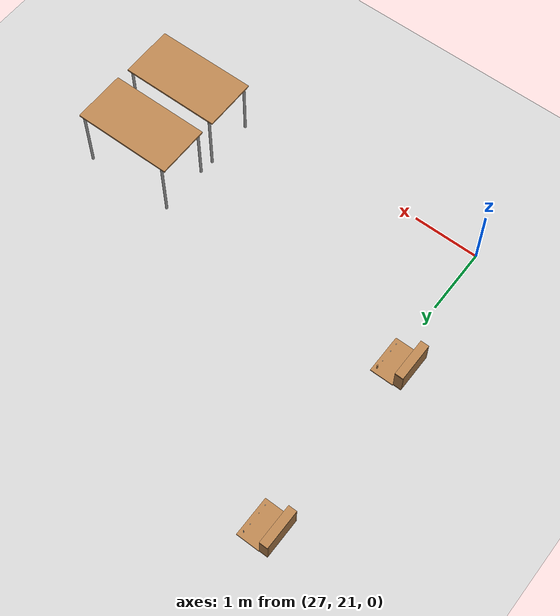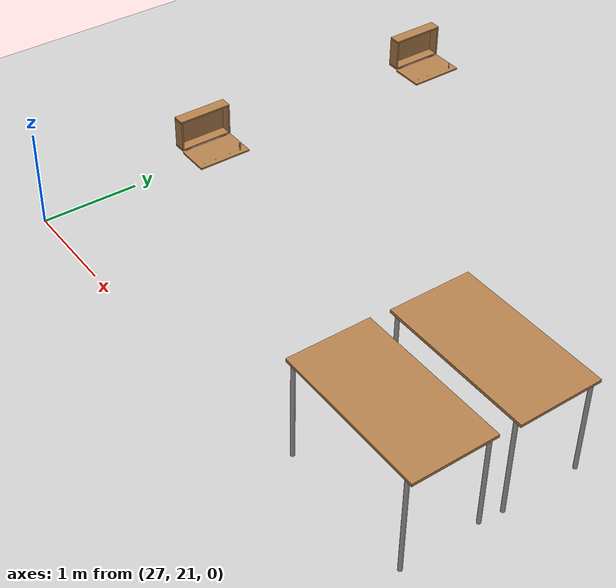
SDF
<sdf version="1.6">
 <world name="default">
  <model name="ground_plane">
   <static>1</static>
   <link name="link">
    <collision name="collision">
     <geometry><plane><normal>0 0 1</normal><size>100 100</size></plane></geometry>
     <surface><friction><ode><mu>100</mu><mu2>50</mu2></ode></friction></surface>
    </collision>
    <visual name="visual">
     <cast_shadows>0</cast_shadows>
     <geometry><plane><normal>0 0 1</normal><size>100 100</size></plane></geometry>
     <material>
      <script><uri>file://media/materials/scripts/gazebo.material</uri><name>Gazebo/Grey</name></script>
     </material>
    </visual>
   </link>
  </model>
  <model name="wooden_case_metal_peg">
   <link name="wooden_case::base">
    <pose>0 0 0.024 0 -0 0</pose>
    <inertial>
     <pose>-0.022184 0 0.171592 0 -0 0</pose>
     <mass>3.96264</mass>
     <inertia>
      <ixx>0.213536</ixx>
      <ixy>0</ixy>
      <ixz>0.000779377</ixz>
      <iyy>0.0708943</iyy>
      <iyz>0</iyz>
      <izz>0.154604</izz>
     </inertia>
    </inertial>
    <collision name="collision_back">
     <pose>-0.053975 0 0.1778 0 -0 0</pose>
     <geometry><box><size>0.01905 0.5461 0.3175</size></box></geometry>
     <surface>
      <contact>
       <poissons_ratio>0.347</poissons_ratio>
       <elastic_modulus>8.8e+09</elastic_modulus>
       <ode><kp>100000</kp><kd>100</kd><max_vel>100</max_vel><min_depth>0.001</min_depth></ode>
      </contact>
      <friction>
       <torsional>
        <coefficient>1</coefficient>
        <use_patch_radius>0</use_patch_radius>
        <surface_radius>0.01</surface_radius>
       </torsional>
      </friction>
     </surface>
    </collision>
    <visual name="visual_back">
     <pose>-0.053975 0 0.1778 0 -0 0</pose>
     <geometry><box><size>0.01905 0.5461 0.3175</size></box></geometry>
     <material>
      <script><uri>file://media/materials/scripts/gazebo.material</uri><name>Gazebo/Wood</name></script>
     </material>
    </visual>
    <collision name="collision_bottom">
     <pose>0 0 0.009525 0 -0 0</pose>
     <geometry><box><size>0.127 0.5842 0.01905</size></box></geometry>
     <surface>
      <contact>
       <poissons_ratio>0.347</poissons_ratio>
       <elastic_modulus>8.8e+09</elastic_modulus>
       <ode><kp>100000</kp><kd>100</kd><max_vel>100</max_vel><min_depth>0.001</min_depth></ode>
      </contact>
      <friction>
       <torsional>
        <coefficient>1</coefficient>
        <use_patch_radius>0</use_patch_radius>
        <surface_radius>0.01</surface_radius>
       </torsional>
      </friction>
     </surface>
    </collision>
    <visual name="visual_bottom">
     <pose>0 0 0.009525 0 -0 0</pose>
     <geometry><box><size>0.127 0.5842 0.01905</size></box></geometry>
     <material>
      <script><uri>file://media/materials/scripts/gazebo.material</uri><name>Gazebo/Wood</name></script>
     </material>
    </visual>
    <collision name="collision_top">
     <pose>0 0 0.346075 0 -0 0</pose>
     <geometry><box><size>0.127 0.5842 0.01905</size></box></geometry>
     <surface>
      <contact>
       <poissons_ratio>0.347</poissons_ratio>
       <elastic_modulus>8.8e+09</elastic_modulus>
       <ode><kp>100000</kp><kd>100</kd><max_vel>100</max_vel><min_depth>0.001</min_depth></ode>
      </contact>
      <friction>
       <torsional>
        <coefficient>1</coefficient>
        <use_patch_radius>0</use_patch_radius>
        <surface_radius>0.01</surface_radius>
       </torsional>
      </friction>
     </surface>
    </collision>
    <visual name="visual_top">
     <pose>0 0 0.346075 0 -0 0</pose>
     <geometry><box><size>0.127 0.5842 0.01905</size></box></geometry>
     <material>
      <script><uri>file://media/materials/scripts/gazebo.material</uri><name>Gazebo/Wood</name></script>
     </material>
    </visual>
    <collision name="collision_left">
     <pose>0 -0.282575 0.1778 0 -0 0</pose>
     <geometry><box><size>0.127 0.01905 0.3175</size></box></geometry>
     <surface>
      <contact>
       <poissons_ratio>0.347</poissons_ratio>
       <elastic_modulus>8.8e+09</elastic_modulus>
       <ode><kp>100000</kp><kd>100</kd><max_vel>100</max_vel><min_depth>0.001</min_depth></ode>
      </contact>
      <friction>
       <torsional>
        <coefficient>1</coefficient>
        <use_patch_radius>0</use_patch_radius>
        <surface_radius>0.01</surface_radius>
       </torsional>
      </friction>
     </surface>
    </collision>
    <visual name="visual_left">
     <pose>0 -0.282575 0.1778 0 -0 0</pose>
     <geometry><box><size>0.127 0.01905 0.3175</size></box></geometry>
     <material>
      <script><uri>file://media/materials/scripts/gazebo.material</uri><name>Gazebo/Wood</name></script>
     </material>
    </visual>
    <collision name="collision_right">
     <pose>0 0.282575 0.1778 0 -0 0</pose>
     <geometry><box><size>0.127 0.01905 0.3175</size></box></geometry>
     <surface>
      <contact>
       <poissons_ratio>0.347</poissons_ratio>
       <elastic_modulus>8.8e+09</elastic_modulus>
       <ode><kp>100000</kp><kd>100</kd><max_vel>100</max_vel><min_depth>0.001</min_depth></ode>
      </contact>
      <friction>
       <torsional>
        <coefficient>1</coefficient>
        <use_patch_radius>0</use_patch_radius>
        <surface_radius>0.01</surface_radius>
       </torsional>
      </friction>
     </surface>
    </collision>
    <visual name="visual_right">
     <pose>0 0.282575 0.1778 0 -0 0</pose>
     <geometry><box><size>0.127 0.01905 0.3175</size></box></geometry>
     <material>
      <script><uri>file://media/materials/scripts/gazebo.material</uri><name>Gazebo/Wood</name></script>
     </material>
    </visual>
    <collision name="collision_block_left">
     <pose>0.0095 -0.2151 -0.012 0 -0 0</pose>
     <geometry><box><size>0.108 0.05 0.024</size></box></geometry>
     <surface>
      <contact>
       <poissons_ratio>0.347</poissons_ratio>
       <elastic_modulus>8.8e+09</elastic_modulus>
       <ode><kp>100000</kp><kd>100</kd><max_vel>100</max_vel><min_depth>0.001</min_depth></ode>
      </contact>
      <friction>
       <torsional>
        <coefficient>1</coefficient>
        <use_patch_radius>0</use_patch_radius>
        <surface_radius>0.01</surface_radius>
       </torsional>
      </friction>
     </surface>
    </collision>
    <visual name="visual_block_left">
     <pose>0.0095 -0.2151 -0.012 0 -0 0</pose>
     <geometry><box><size>0.108 0.05 0.024</size></box></geometry>
     <material>
      <script><uri>file://media/materials/scripts/gazebo.material</uri><name>Gazebo/Wood</name></script>
     </material>
    </visual>
    <collision name="collision_block_right">
     <pose>0.0095 0.2151 -0.012 0 -0 0</pose>
     <geometry><box><size>0.108 0.05 0.024</size></box></geometry>
     <surface>
      <contact>
       <poissons_ratio>0.347</poissons_ratio>
       <elastic_modulus>8.8e+09</elastic_modulus>
       <ode><kp>100000</kp><kd>100</kd><max_vel>100</max_vel><min_depth>0.001</min_depth></ode>
      </contact>
      <friction>
       <torsional>
        <coefficient>1</coefficient>
        <use_patch_radius>0</use_patch_radius>
        <surface_radius>0.01</surface_radius>
       </torsional>
      </friction>
     </surface>
    </collision>
    <visual name="visual_block_right">
     <pose>0.0095 0.2151 -0.012 0 -0 0</pose>
     <geometry><box><size>0.108 0.05 0.024</size></box></geometry>
     <material>
      <script><uri>file://media/materials/scripts/gazebo.material</uri><name>Gazebo/Wood</name></script>
     </material>
    </visual>
   </link>
   <link name="wooden_case::lid">
    <pose>0.243775 0 0.009525 0 -0 0</pose>
    <inertial>
     <mass>1.97874</mass>
     <inertia>
      <ixx>0.0563367</ixx>
      <ixy>0</ixy>
      <ixz>0</ixz>
      <iyy>0.020911</iyy>
      <iyz>0</iyz>
      <izz>0.0771281</izz>
     </inertia>
    </inertial>
    <collision name="collision">
     <geometry><box><size>0.3556 0.5842 0.01905</size></box></geometry>
     <surface>
      <contact>
       <poissons_ratio>0.347</poissons_ratio>
       <elastic_modulus>8.8e+09</elastic_modulus>
       <ode><kp>100000</kp><kd>100</kd><max_vel>100</max_vel><min_depth>0.001</min_depth></ode>
      </contact>
      <friction>
       <torsional>
        <coefficient>1</coefficient>
        <use_patch_radius>0</use_patch_radius>
        <surface_radius>0.01</surface_radius>
       </torsional>
      </friction>
     </surface>
    </collision>
    <visual name="visual">
     <geometry><box><size>0.3556 0.5842 0.01905</size></box></geometry>
     <material>
      <script><uri>file://media/materials/scripts/gazebo.material</uri><name>Gazebo/Wood</name></script>
     </material>
    </visual>
    <visual name="tee_nut_1">
     <pose>0.122 -0.216 0 0 -0 0</pose>
     <geometry><cylinder><radius>0.00635</radius><length>0.0192405</length></cylinder></geometry>
     <material>
      <script><uri>file://media/materials/scripts/gazebo.material</uri><name>Gazebo/Grey</name></script>
     </material>
    </visual>
    <visual name="tee_nut_2">
     <pose>0.122 -0.088 0 0 -0 0</pose>
     <geometry><cylinder><radius>0.00635</radius><length>0.0192405</length></cylinder></geometry>
     <material>
      <script><uri>file://media/materials/scripts/gazebo.material</uri><name>Gazebo/Grey</name></script>
     </material>
    </visual>
    <visual name="tee_nut_3">
     <pose>0.122 0.088 0 0 -0 0</pose>
     <geometry><cylinder><radius>0.00635</radius><length>0.0192405</length></cylinder></geometry>
     <material>
      <script><uri>file://media/materials/scripts/gazebo.material</uri><name>Gazebo/Grey</name></script>
     </material>
    </visual>
    <visual name="tee_nut_4">
     <pose>0.122 0.216 0 0 -0 0</pose>
     <geometry><cylinder><radius>0.00635</radius><length>0.0192405</length></cylinder></geometry>
     <material>
      <script><uri>file://media/materials/scripts/gazebo.material</uri><name>Gazebo/Grey</name></script>
     </material>
    </visual>
   </link>
   <joint name="wooden_case::lid_hinge" type="revolute">
    <pose>-0.1778 0 0.01905 0 -0 0</pose>
    <parent>wooden_case::base</parent>
    <child>wooden_case::lid</child>
    <axis>
     <xyz>0 1 0</xyz>
     <limit><upper>0.523599</upper><lower>-1.5708</lower></limit>
     <use_parent_model_frame>0</use_parent_model_frame>
     <dynamics><spring_reference>0</spring_reference><spring_stiffness>0</spring_stiffness></dynamics>
    </axis>
   </joint>
   <link name="peg::link">
    <pose>0.365774 0.216 0.05005 0 -0 0</pose>
    <inertial>
     <mass>0.0121</mass>
     <inertia>
      <ixx>3.90898e-06</ixx>
      <ixy>0</ixy>
      <ixz>0</ixz>
      <iyy>3.90898e-06</iyy>
      <iyz>0</iyz>
      <izz>6.58845e-08</izz>
     </inertia>
    </inertial>
    <collision name="collision">
     <geometry><cylinder><radius>0.0033</radius><length>0.062</length></cylinder></geometry>
     <surface>
      <contact>
       <poissons_ratio>0.305</poissons_ratio>
       <elastic_modulus>2e+11</elastic_modulus>
       <ode><kp>100000</kp><kd>100</kd><max_vel>100</max_vel><min_depth>0.001</min_depth></ode>
      </contact>
      <friction>
       <torsional>
        <coefficient>1</coefficient>
        <use_patch_radius>0</use_patch_radius>
        <surface_radius>0.01</surface_radius>
       </torsional>
      </friction>
     </surface>
    </collision>
    <visual name="visual">
     <geometry><cylinder><radius>0.0033</radius><length>0.062</length></cylinder></geometry>
     <material>
      <script><uri>file://media/materials/scripts/gazebo.material</uri><name>Gazebo/Grey</name></script>
     </material>
    </visual>
   </link>
   <joint name="case_peg" type="revolute">
    <child>peg::link</child>
    <parent>wooden_case::lid</parent>
    <axis>
     <xyz>0 0 1</xyz>
     <limit><upper>0</upper><lower>0</lower></limit>
     <use_parent_model_frame>0</use_parent_model_frame>
     <dynamics><spring_reference>0</spring_reference><spring_stiffness>0</spring_stiffness></dynamics>
    </axis>
   </joint>
   <pose>26.746 25.7744 -0.001057 0 -0.000431 0</pose>
  </model>
  <model name="wooden_case_wooden_peg">
   <link name="wooden_case::base">
    <pose>0 0 0.024 0 -0 0</pose>
    <inertial>
     <pose>-0.022184 0 0.171592 0 -0 0</pose>
     <mass>3.96264</mass>
     <inertia>
      <ixx>0.213536</ixx>
      <ixy>0</ixy>
      <ixz>0.000779377</ixz>
      <iyy>0.0708943</iyy>
      <iyz>0</iyz>
      <izz>0.154604</izz>
     </inertia>
    </inertial>
    <collision name="collision_back">
     <pose>-0.053975 0 0.1778 0 -0 0</pose>
     <geometry><box><size>0.01905 0.5461 0.3175</size></box></geometry>
     <surface>
      <contact>
       <poissons_ratio>0.347</poissons_ratio>
       <elastic_modulus>8.8e+09</elastic_modulus>
       <ode><kp>100000</kp><kd>100</kd><max_vel>100</max_vel><min_depth>0.001</min_depth></ode>
      </contact>
      <friction>
       <torsional>
        <coefficient>1</coefficient>
        <use_patch_radius>0</use_patch_radius>
        <surface_radius>0.01</surface_radius>
       </torsional>
      </friction>
     </surface>
    </collision>
    <visual name="visual_back">
     <pose>-0.053975 0 0.1778 0 -0 0</pose>
     <geometry><box><size>0.01905 0.5461 0.3175</size></box></geometry>
     <material>
      <script><uri>file://media/materials/scripts/gazebo.material</uri><name>Gazebo/Wood</name></script>
     </material>
    </visual>
    <collision name="collision_bottom">
     <pose>0 0 0.009525 0 -0 0</pose>
     <geometry><box><size>0.127 0.5842 0.01905</size></box></geometry>
     <surface>
      <contact>
       <poissons_ratio>0.347</poissons_ratio>
       <elastic_modulus>8.8e+09</elastic_modulus>
       <ode><kp>100000</kp><kd>100</kd><max_vel>100</max_vel><min_depth>0.001</min_depth></ode>
      </contact>
      <friction>
       <torsional>
        <coefficient>1</coefficient>
        <use_patch_radius>0</use_patch_radius>
        <surface_radius>0.01</surface_radius>
       </torsional>
      </friction>
     </surface>
    </collision>
    <visual name="visual_bottom">
     <pose>0 0 0.009525 0 -0 0</pose>
     <geometry><box><size>0.127 0.5842 0.01905</size></box></geometry>
     <material>
      <script><uri>file://media/materials/scripts/gazebo.material</uri><name>Gazebo/Wood</name></script>
     </material>
    </visual>
    <collision name="collision_top">
     <pose>0 0 0.346075 0 -0 0</pose>
     <geometry><box><size>0.127 0.5842 0.01905</size></box></geometry>
     <surface>
      <contact>
       <poissons_ratio>0.347</poissons_ratio>
       <elastic_modulus>8.8e+09</elastic_modulus>
       <ode><kp>100000</kp><kd>100</kd><max_vel>100</max_vel><min_depth>0.001</min_depth></ode>
      </contact>
      <friction>
       <torsional>
        <coefficient>1</coefficient>
        <use_patch_radius>0</use_patch_radius>
        <surface_radius>0.01</surface_radius>
       </torsional>
      </friction>
     </surface>
    </collision>
    <visual name="visual_top">
     <pose>0 0 0.346075 0 -0 0</pose>
     <geometry><box><size>0.127 0.5842 0.01905</size></box></geometry>
     <material>
      <script><uri>file://media/materials/scripts/gazebo.material</uri><name>Gazebo/Wood</name></script>
     </material>
    </visual>
    <collision name="collision_left">
     <pose>0 -0.282575 0.1778 0 -0 0</pose>
     <geometry><box><size>0.127 0.01905 0.3175</size></box></geometry>
     <surface>
      <contact>
       <poissons_ratio>0.347</poissons_ratio>
       <elastic_modulus>8.8e+09</elastic_modulus>
       <ode><kp>100000</kp><kd>100</kd><max_vel>100</max_vel><min_depth>0.001</min_depth></ode>
      </contact>
      <friction>
       <torsional>
        <coefficient>1</coefficient>
        <use_patch_radius>0</use_patch_radius>
        <surface_radius>0.01</surface_radius>
       </torsional>
      </friction>
     </surface>
    </collision>
    <visual name="visual_left">
     <pose>0 -0.282575 0.1778 0 -0 0</pose>
     <geometry><box><size>0.127 0.01905 0.3175</size></box></geometry>
     <material>
      <script><uri>file://media/materials/scripts/gazebo.material</uri><name>Gazebo/Wood</name></script>
     </material>
    </visual>
    <collision name="collision_right">
     <pose>0 0.282575 0.1778 0 -0 0</pose>
     <geometry><box><size>0.127 0.01905 0.3175</size></box></geometry>
     <surface>
      <contact>
       <poissons_ratio>0.347</poissons_ratio>
       <elastic_modulus>8.8e+09</elastic_modulus>
       <ode><kp>100000</kp><kd>100</kd><max_vel>100</max_vel><min_depth>0.001</min_depth></ode>
      </contact>
      <friction>
       <torsional>
        <coefficient>1</coefficient>
        <use_patch_radius>0</use_patch_radius>
        <surface_radius>0.01</surface_radius>
       </torsional>
      </friction>
     </surface>
    </collision>
    <visual name="visual_right">
     <pose>0 0.282575 0.1778 0 -0 0</pose>
     <geometry><box><size>0.127 0.01905 0.3175</size></box></geometry>
     <material>
      <script><uri>file://media/materials/scripts/gazebo.material</uri><name>Gazebo/Wood</name></script>
     </material>
    </visual>
    <collision name="collision_block_left">
     <pose>0.0095 -0.2151 -0.012 0 -0 0</pose>
     <geometry><box><size>0.108 0.05 0.024</size></box></geometry>
     <surface>
      <contact>
       <poissons_ratio>0.347</poissons_ratio>
       <elastic_modulus>8.8e+09</elastic_modulus>
       <ode><kp>100000</kp><kd>100</kd><max_vel>100</max_vel><min_depth>0.001</min_depth></ode>
      </contact>
      <friction>
       <torsional>
        <coefficient>1</coefficient>
        <use_patch_radius>0</use_patch_radius>
        <surface_radius>0.01</surface_radius>
       </torsional>
      </friction>
     </surface>
    </collision>
    <visual name="visual_block_left">
     <pose>0.0095 -0.2151 -0.012 0 -0 0</pose>
     <geometry><box><size>0.108 0.05 0.024</size></box></geometry>
     <material>
      <script><uri>file://media/materials/scripts/gazebo.material</uri><name>Gazebo/Wood</name></script>
     </material>
    </visual>
    <collision name="collision_block_right">
     <pose>0.0095 0.2151 -0.012 0 -0 0</pose>
     <geometry><box><size>0.108 0.05 0.024</size></box></geometry>
     <surface>
      <contact>
       <poissons_ratio>0.347</poissons_ratio>
       <elastic_modulus>8.8e+09</elastic_modulus>
       <ode><kp>100000</kp><kd>100</kd><max_vel>100</max_vel><min_depth>0.001</min_depth></ode>
      </contact>
      <friction>
       <torsional>
        <coefficient>1</coefficient>
        <use_patch_radius>0</use_patch_radius>
        <surface_radius>0.01</surface_radius>
       </torsional>
      </friction>
     </surface>
    </collision>
    <visual name="visual_block_right">
     <pose>0.0095 0.2151 -0.012 0 -0 0</pose>
     <geometry><box><size>0.108 0.05 0.024</size></box></geometry>
     <material>
      <script><uri>file://media/materials/scripts/gazebo.material</uri><name>Gazebo/Wood</name></script>
     </material>
    </visual>
   </link>
   <link name="wooden_case::lid">
    <pose>0.243775 0 0.009525 0 -0 0</pose>
    <inertial>
     <mass>1.97874</mass>
     <inertia>
      <ixx>0.0563367</ixx>
      <ixy>0</ixy>
      <ixz>0</ixz>
      <iyy>0.020911</iyy>
      <iyz>0</iyz>
      <izz>0.0771281</izz>
     </inertia>
    </inertial>
    <collision name="collision">
     <geometry><box><size>0.3556 0.5842 0.01905</size></box></geometry>
     <surface>
      <contact>
       <poissons_ratio>0.347</poissons_ratio>
       <elastic_modulus>8.8e+09</elastic_modulus>
       <ode><kp>100000</kp><kd>100</kd><max_vel>100</max_vel><min_depth>0.001</min_depth></ode>
      </contact>
      <friction>
       <torsional>
        <coefficient>1</coefficient>
        <use_patch_radius>0</use_patch_radius>
        <surface_radius>0.01</surface_radius>
       </torsional>
      </friction>
     </surface>
    </collision>
    <visual name="visual">
     <geometry><box><size>0.3556 0.5842 0.01905</size></box></geometry>
     <material>
      <script><uri>file://media/materials/scripts/gazebo.material</uri><name>Gazebo/Wood</name></script>
     </material>
    </visual>
    <visual name="tee_nut_1">
     <pose>0.122 -0.216 0 0 -0 0</pose>
     <geometry><cylinder><radius>0.00635</radius><length>0.0192405</length></cylinder></geometry>
     <material>
      <script><uri>file://media/materials/scripts/gazebo.material</uri><name>Gazebo/Grey</name></script>
     </material>
    </visual>
    <visual name="tee_nut_2">
     <pose>0.122 -0.088 0 0 -0 0</pose>
     <geometry><cylinder><radius>0.00635</radius><length>0.0192405</length></cylinder></geometry>
     <material>
      <script><uri>file://media/materials/scripts/gazebo.material</uri><name>Gazebo/Grey</name></script>
     </material>
    </visual>
    <visual name="tee_nut_3">
     <pose>0.122 0.088 0 0 -0 0</pose>
     <geometry><cylinder><radius>0.00635</radius><length>0.0192405</length></cylinder></geometry>
     <material>
      <script><uri>file://media/materials/scripts/gazebo.material</uri><name>Gazebo/Grey</name></script>
     </material>
    </visual>
    <visual name="tee_nut_4">
     <pose>0.122 0.216 0 0 -0 0</pose>
     <geometry><cylinder><radius>0.00635</radius><length>0.0192405</length></cylinder></geometry>
     <material>
      <script><uri>file://media/materials/scripts/gazebo.material</uri><name>Gazebo/Grey</name></script>
     </material>
    </visual>
   </link>
   <joint name="wooden_case::lid_hinge" type="revolute">
    <pose>-0.1778 0 0.01905 0 -0 0</pose>
    <parent>wooden_case::base</parent>
    <child>wooden_case::lid</child>
    <axis>
     <xyz>0 1 0</xyz>
     <limit><upper>0.523599</upper><lower>-1.5708</lower></limit>
     <use_parent_model_frame>0</use_parent_model_frame>
     <dynamics><spring_reference>0</spring_reference><spring_stiffness>0</spring_stiffness></dynamics>
    </axis>
   </joint>
   <link name="peg::link">
    <pose>0.365774 0.216 0.05905 0 -0 0</pose>
    <inertial>
     <mass>0.0175</mass>
     <inertia>
      <ixx>9.74923e-06</ixx>
      <ixy>0</ixy>
      <ixz>0</ixz>
      <iyy>9.74923e-06</iyy>
      <iyz>0</iyz>
      <izz>8.31797e-07</izz>
     </inertia>
    </inertial>
    <collision name="collision">
     <geometry><cylinder><radius>0.00975</radius><length>0.08</length></cylinder></geometry>
     <surface>
      <contact>
       <poissons_ratio>0.347</poissons_ratio>
       <elastic_modulus>8.8e+09</elastic_modulus>
       <ode><kp>100000</kp><kd>100</kd><max_vel>100</max_vel><min_depth>0.001</min_depth></ode>
      </contact>
      <friction>
       <torsional>
        <coefficient>1</coefficient>
        <use_patch_radius>0</use_patch_radius>
        <surface_radius>0.01</surface_radius>
       </torsional>
      </friction>
     </surface>
    </collision>
    <visual name="visual">
     <geometry><cylinder><radius>0.00975</radius><length>0.08</length></cylinder></geometry>
     <material>
      <script><uri>file://media/materials/scripts/gazebo.material</uri><name>Gazebo/Wood</name></script>
     </material>
    </visual>
   </link>
   <joint name="case_peg" type="revolute">
    <child>peg::link</child>
    <parent>wooden_case::lid</parent>
    <axis>
     <xyz>0 0 1</xyz>
     <limit><upper>0</upper><lower>0</lower></limit>
     <use_parent_model_frame>0</use_parent_model_frame>
     <dynamics><spring_reference>0</spring_reference><spring_stiffness>0</spring_stiffness></dynamics>
    </axis>
   </joint>
   <pose>26.7304 22.978 -0.001057 -1e-06 -0.000432 -0</pose>
  </model>
  <model name="table_7">
   <static>1</static>
   <link name="link">
    <collision name="surface">
     <pose>0 0 1 0 -0 0</pose>
     <geometry><box><size>1.5 0.8 0.03</size></box></geometry>
     <surface><friction><ode><mu>0.6</mu><mu2>0.6</mu2></ode></friction></surface>
    </collision>
    <visual name="visual1">
     <pose>0 0 1 0 -0 0</pose>
     <geometry><box><size>1.5 0.8 0.03</size></box></geometry>
     <material>
      <script><uri>file://media/materials/scripts/gazebo.material</uri><name>Gazebo/Wood</name></script>
     </material>
    </visual>
    <collision name="front_left_leg">
     <pose>0.68 0.38 0.5 0 -0 0</pose>
     <geometry><cylinder><radius>0.02</radius><length>1</length></cylinder></geometry>
    </collision>
    <visual name="front_left_leg">
     <pose>0.68 0.38 0.5 0 -0 0</pose>
     <geometry><cylinder><radius>0.02</radius><length>1</length></cylinder></geometry>
     <material>
      <script><uri>file://media/materials/scripts/gazebo.material</uri><name>Gazebo/Grey</name></script>
     </material>
    </visual>
    <collision name="front_right_leg">
     <pose>0.68 -0.38 0.5 0 -0 0</pose>
     <geometry><cylinder><radius>0.02</radius><length>1</length></cylinder></geometry>
    </collision>
    <visual name="front_right_leg">
     <pose>0.68 -0.38 0.5 0 -0 0</pose>
     <geometry><cylinder><radius>0.02</radius><length>1</length></cylinder></geometry>
     <material>
      <script><uri>file://media/materials/scripts/gazebo.material</uri><name>Gazebo/Grey</name></script>
     </material>
    </visual>
    <collision name="back_right_leg">
     <pose>-0.68 -0.38 0.5 0 -0 0</pose>
     <geometry><cylinder><radius>0.02</radius><length>1</length></cylinder></geometry>
    </collision>
    <visual name="back_right_leg">
     <pose>-0.68 -0.38 0.5 0 -0 0</pose>
     <geometry><cylinder><radius>0.02</radius><length>1</length></cylinder></geometry>
     <material>
      <script><uri>file://media/materials/scripts/gazebo.material</uri><name>Gazebo/Grey</name></script>
     </material>
    </visual>
    <collision name="back_left_leg">
     <pose>-0.68 0.38 0.5 0 -0 0</pose>
     <geometry><cylinder><radius>0.02</radius><length>1</length></cylinder></geometry>
    </collision>
    <visual name="back_left_leg">
     <pose>-0.68 0.38 0.5 0 -0 0</pose>
     <geometry><cylinder><radius>0.02</radius><length>1</length></cylinder></geometry>
     <material>
      <script><uri>file://media/materials/scripts/gazebo.material</uri><name>Gazebo/Grey</name></script>
     </material>
    </visual>
   </link>
   <pose>31.5268 22.5925 0 0 -0 0</pose>
  </model>
  <model name="table_10">
   <static>1</static>
   <link name="link">
    <collision name="surface">
     <pose>0 0 1 0 -0 0</pose>
     <geometry><box><size>1.5 0.8 0.03</size></box></geometry>
     <surface><friction><ode><mu>0.6</mu><mu2>0.6</mu2></ode></friction></surface>
    </collision>
    <visual name="visual1">
     <pose>0 0 1 0 -0 0</pose>
     <geometry><box><size>1.5 0.8 0.03</size></box></geometry>
     <material>
      <script><uri>file://media/materials/scripts/gazebo.material</uri><name>Gazebo/Wood</name></script>
     </material>
    </visual>
    <collision name="front_left_leg">
     <pose>0.68 0.38 0.5 0 -0 0</pose>
     <geometry><cylinder><radius>0.02</radius><length>1</length></cylinder></geometry>
    </collision>
    <visual name="front_left_leg">
     <pose>0.68 0.38 0.5 0 -0 0</pose>
     <geometry><cylinder><radius>0.02</radius><length>1</length></cylinder></geometry>
     <material>
      <script><uri>file://media/materials/scripts/gazebo.material</uri><name>Gazebo/Grey</name></script>
     </material>
    </visual>
    <collision name="front_right_leg">
     <pose>0.68 -0.38 0.5 0 -0 0</pose>
     <geometry><cylinder><radius>0.02</radius><length>1</length></cylinder></geometry>
    </collision>
    <visual name="front_right_leg">
     <pose>0.68 -0.38 0.5 0 -0 0</pose>
     <geometry><cylinder><radius>0.02</radius><length>1</length></cylinder></geometry>
     <material>
      <script><uri>file://media/materials/scripts/gazebo.material</uri><name>Gazebo/Grey</name></script>
     </material>
    </visual>
    <collision name="back_right_leg">
     <pose>-0.68 -0.38 0.5 0 -0 0</pose>
     <geometry><cylinder><radius>0.02</radius><length>1</length></cylinder></geometry>
    </collision>
    <visual name="back_right_leg">
     <pose>-0.68 -0.38 0.5 0 -0 0</pose>
     <geometry><cylinder><radius>0.02</radius><length>1</length></cylinder></geometry>
     <material>
      <script><uri>file://media/materials/scripts/gazebo.material</uri><name>Gazebo/Grey</name></script>
     </material>
    </visual>
    <collision name="back_left_leg">
     <pose>-0.68 0.38 0.5 0 -0 0</pose>
     <geometry><cylinder><radius>0.02</radius><length>1</length></cylinder></geometry>
    </collision>
    <visual name="back_left_leg">
     <pose>-0.68 0.38 0.5 0 -0 0</pose>
     <geometry><cylinder><radius>0.02</radius><length>1</length></cylinder></geometry>
     <material>
      <script><uri>file://media/materials/scripts/gazebo.material</uri><name>Gazebo/Grey</name></script>
     </material>
    </visual>
   </link>
   <pose>31.5072 21.6082 0 0 -0 0</pose>
  </model>
 </world>
</sdf>
